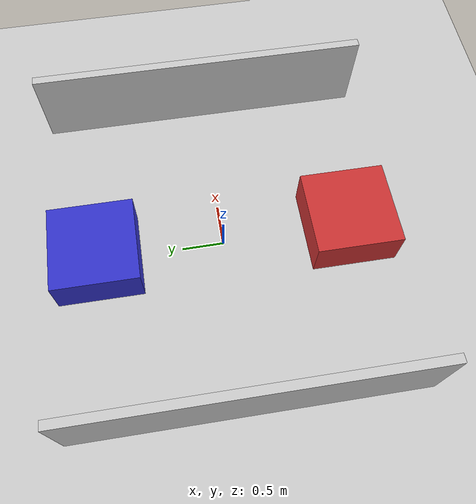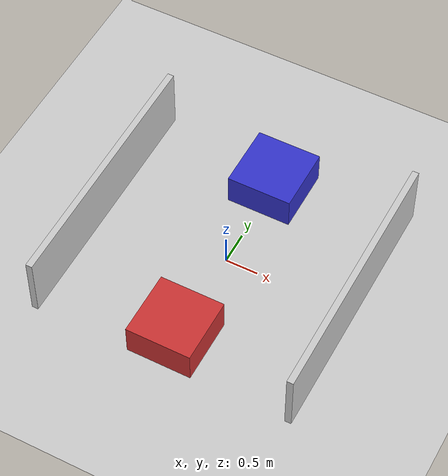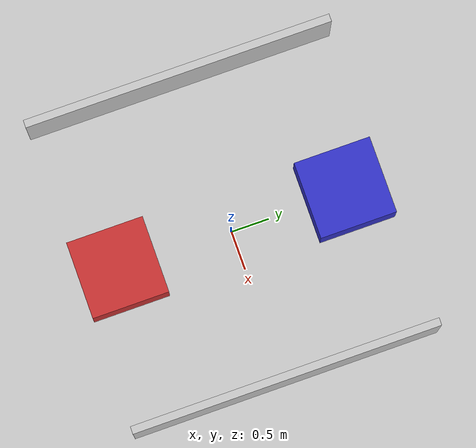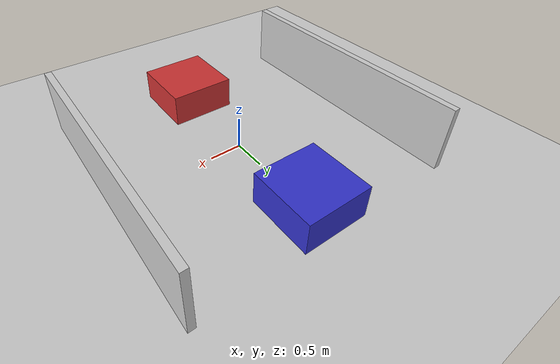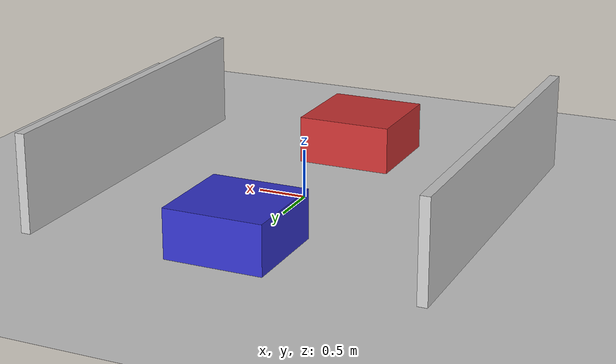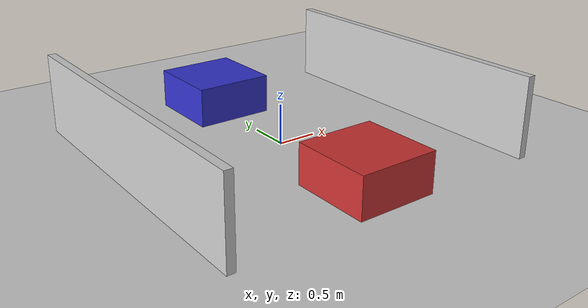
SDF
<?xml version="1.0"?>
<sdf version="1.6">
  <world name="default">

    <include>
      <uri>model://ground_plane</uri>
    </include>

    <include>
      <uri>model://sun</uri>
    </include>

    <include>
      <uri>model://arena</uri>
    </include>

    <scene>
      <shadows>true</shadows>
      <ambient>0.4 0.4 0.4 1.0</ambient>
      <background>0.7 0.7 0.7 1.0</background>
    </scene>

    <gui fullscreen='0'>
      <camera name='user_camera'>
        <pose frame=''>5.0 -5.0 5.0 0 0.785 0.785</pose>
        <view_controller>orbit</view_controller>
        <projection_type>perspective</projection_type>
      </camera>
    </gui>

    <physics type="ode">
      <real_time_update_rate>1000.0</real_time_update_rate>
      <max_step_size>0.001</max_step_size>
      <real_time_factor>1</real_time_factor>
      <ode>
        <solver>
          <type>quick</type>
          <iters>150</iters>
          <precon_iters>0</precon_iters>
          <sor>1.400000</sor>
          <use_dynamic_moi_rescaling>1</use_dynamic_moi_rescaling>
        </solver>
        <constraints>
          <cfm>0.00001</cfm>
          <erp>0.2</erp>
          <contact_max_correcting_vel>2000.000000</contact_max_correcting_vel>
          <contact_surface_layer>0.01000</contact_surface_layer>
        </constraints>
      </ode>
    </physics>

    <model name="wall1">
      <static>true</static>
      <pose>2.0 0.0 0.5 0 0 0</pose>
      <link name="link">
        <collision name="collision">
          <geometry>
            <box>
              <size>0.1 4.0 1.0</size>
            </box>
          </geometry>
        </collision>
        <visual name="visual">
          <geometry>
            <box>
              <size>0.1 4.0 1.0</size>
            </box>
          </geometry>
          <material>
            <ambient>0.8 0.8 0.8 1</ambient>
            <diffuse>0.8 0.8 0.8 1</diffuse>
            <specular>0.1 0.1 0.1 1</specular>
          </material>
        </visual>
      </link>
    </model>

    <model name="wall2">
      <static>true</static>
      <pose>-2.0 0.0 0.5 0 0 0</pose>
      <link name="link">
        <collision name="collision">
          <geometry>
            <box>
              <size>0.1 4.0 1.0</size>
            </box>
          </geometry>
        </collision>
        <visual name="visual">
          <geometry>
            <box>
              <size>0.1 4.0 1.0</size>
            </box>
          </geometry>
          <material>
            <ambient>0.8 0.8 0.8 1</ambient>
            <diffuse>0.8 0.8 0.8 1</diffuse>
            <specular>0.1 0.1 0.1 1</specular>
          </material>
        </visual>
      </link>
    </model>

    <model name="obstacle1">
      <static>true</static>
      <pose>0.0 1.5 0.25 0 0 0</pose>
      <link name="link">
        <collision name="collision">
          <geometry>
            <box>
              <size>1.0 1.0 0.5</size>
            </box>
          </geometry>
        </collision>
        <visual name="visual">
          <geometry>
            <box>
              <size>1.0 1.0 0.5</size>
            </box>
          </geometry>
          <material>
            <ambient>0.2 0.2 0.8 1</ambient>
            <diffuse>0.2 0.2 0.8 1</diffuse>
            <specular>0.1 0.1 0.1 1</specular>
          </material>
        </visual>
      </link>
    </model>

    <model name="obstacle2">
      <static>true</static>
      <pose>0.0 -1.5 0.25 0 0 0</pose>
      <link name="link">
        <collision name="collision">
          <geometry>
            <box>
              <size>1.0 1.0 0.5</size>
            </box>
          </geometry>
        </collision>
        <visual name="visual">
          <geometry>
            <box>
              <size>1.0 1.0 0.5</size>
            </box>
          </geometry>
          <material>
            <ambient>0.8 0.2 0.2 1</ambient>
            <diffuse>0.8 0.2 0.2 1</diffuse>
            <specular>0.1 0.1 0.1 1</specular>
          </material>
        </visual>
      </link>
    </model>

  </world>
</sdf>

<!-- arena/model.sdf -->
<sdf version='1.7'>
  <model name='arena'>
    <link name='base_link'>
      <inertial>
        <pose>0.129001 -0.130413 0.53948 0 -0 0</pose>
        <mass>1075.25</mass>
        <inertia>
          <ixx>170.46</ixx>
          <ixy>2.78909</ixy>
          <ixz>0.840198</ixz>
          <iyy>197.514</iyy>
          <iyz>-0.192264</iyz>
          <izz>40.4445</izz>
        </inertia>
      </inertial>
      <collision name='base_link_collision'>
        <pose>0 0 0 0 -0 0</pose>
        <geometry>
          <mesh>
            <scale>1 1 1</scale>
            <uri>model://arena/meshes/base_link.STL</uri>
          </mesh>
        </geometry>
      </collision>
      <visual name='base_link_visual'>
        <pose>0 0 0 0 -0 0</pose>
        <geometry>
          <mesh>
            <scale>1 1 1</scale>
            <uri>model://arena/meshes/base_link.STL</uri>
          </mesh>
        </geometry>
      </visual>
    </link>
  </model>
</sdf>
